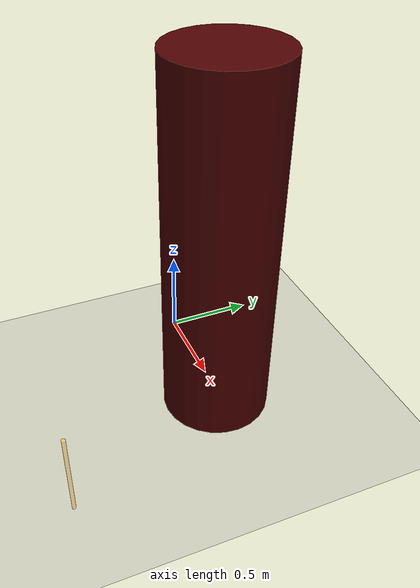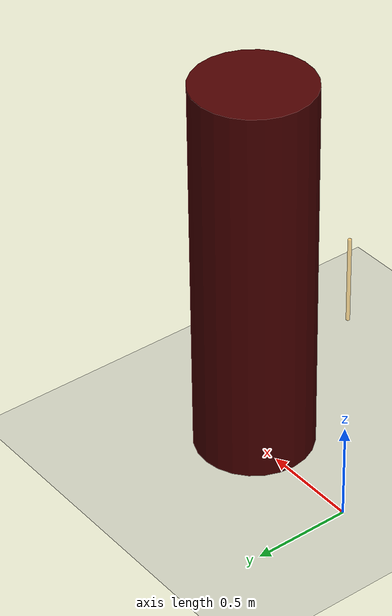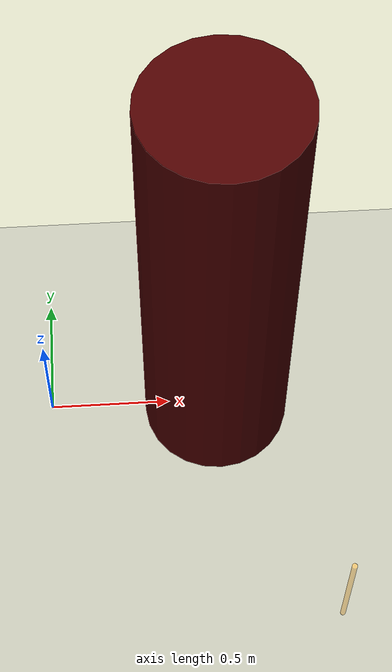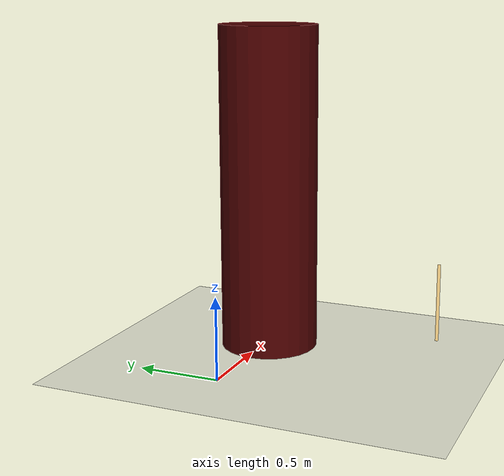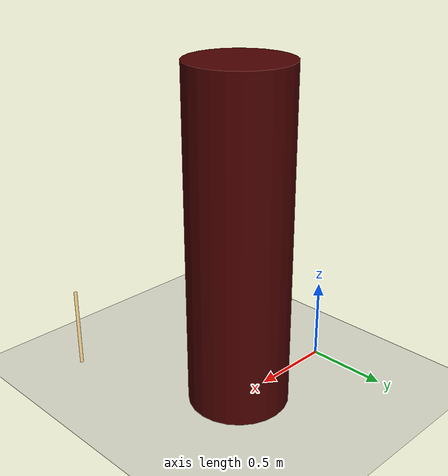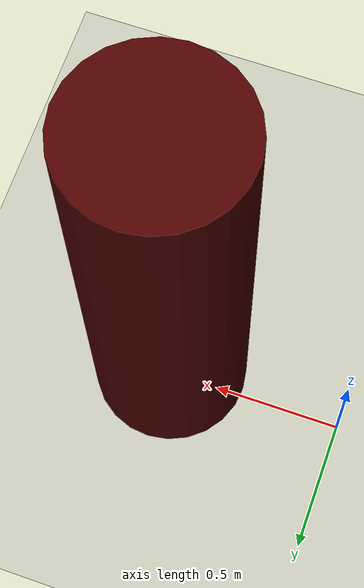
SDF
<sdf version="1.6">
 <world name="default">
  <physics name="default_physics" default="0" type="ode">
   <max_step_size>0.001</max_step_size>
   <real_time_factor>1</real_time_factor>
   <real_time_update_rate>0</real_time_update_rate>
  </physics>
  <light name="sun" type="directional">
   <pose>0 0 10 0 -0 0</pose>
   <diffuse>0.8 0.8 0.8 1</diffuse>
   <specular>0.2 0.2 0.2 1</specular>
   <attenuation>
    <range>1000</range>
    <constant>0.9</constant>
    <linear>0.01</linear>
    <quadratic>0.001</quadratic>
   </attenuation>
   <direction>0.5 0.1 -0.9</direction>
  </light>
  <scene><ambient>0.4 0.4 0.4 1</ambient><background>0.7 0.7 0.7 1</background><shadows>1</shadows></scene>
  <model name="ground_plane_0">
   <static>1</static>
   <link name="link">
    <collision name="collision">
     <geometry><plane><normal>0 0 1</normal><size>100 100</size></plane></geometry>
    </collision>
    <visual name="visual">
     <cast_shadows>0</cast_shadows>
     <geometry><plane><normal>0 0 1</normal><size>100 100</size></plane></geometry>
     <material>
      <script><uri>file://media/materials/scripts/gazebo.material</uri><name>Gazebo/Grey</name></script>
     </material>
    </visual>
    <velocity_decay><linear>0</linear><angular>0</angular></velocity_decay>
   </link>
   <pose>0.497681 0 0 0 -0 0</pose>
  </model>
  <gravity>0 0 -9.8</gravity>
  <magnetic_field>6e-06 2.3e-05 -4.2e-05</magnetic_field>
  <atmosphere type="adiabatic"/>
  <spherical_coordinates>
   <surface_model>EARTH_WGS84</surface_model>
   <latitude_deg>0</latitude_deg>
   <longitude_deg>0</longitude_deg>
   <elevation>0</elevation>
   <heading_deg>0</heading_deg>
  </spherical_coordinates>
  <model name="TargetMark5">
   <link name="link_0">
    <inertial>
     <mass>1</mass>
     <inertia><ixx>0.145833</ixx><ixy>0</ixy><ixz>0</ixz><iyy>0.145833</iyy><iyz>0</iyz><izz>0.125</izz></inertia>
    </inertial>
    <gravity>0</gravity>
    <visual name="visual">
     <geometry><cylinder><radius>0.0105</radius><length>1</length></cylinder></geometry>
     <material>
      <lighting>1</lighting>
      <script><uri>file://media/materials/scripts/gazebo.material</uri><name>Gazebo/Grey</name></script>
      <shader type="pixel"><normal_map>__default__</normal_map></shader>
      <ambient>1 0.6 0 1</ambient>
      <diffuse>1 0.6 0 1</diffuse>
      <specular>1 0.6 0 1</specular>
      <emissive>1 0.6 0 1</emissive>
     </material>
     <transparency>0.6</transparency>
    </visual>
    <collision name="collision">
     <geometry><cylinder><radius>1e-06</radius><length>0.01</length></cylinder></geometry>
     <surface>
      <friction>
       <ode><mu>1</mu><mu2>1</mu2><fdir1>0 0 0</fdir1><slip1>0</slip1><slip2>0</slip2></ode>
       <torsional>
        <coefficient>1</coefficient>
        <patch_radius>0</patch_radius>
        <surface_radius>0</surface_radius>
        <use_patch_radius>1</use_patch_radius>
        <ode><slip>0</slip></ode>
       </torsional>
      </friction>
      <bounce><restitution_coefficient>0</restitution_coefficient><threshold>1e+06</threshold></bounce>
      <contact>
       <collide_without_contact>0</collide_without_contact>
       <collide_without_contact_bitmask>1</collide_without_contact_bitmask>
       <collide_bitmask>1</collide_bitmask>
       <ode>
        <soft_cfm>0</soft_cfm>
        <soft_erp>0.2</soft_erp>
        <kp>1e+13</kp>
        <kd>1</kd>
        <max_vel>0.01</max_vel>
        <min_depth>0</min_depth>
       </ode>
       <bullet>
        <split_impulse>1</split_impulse>
        <split_impulse_penetration_threshold>-0.01</split_impulse_penetration_threshold>
        <soft_cfm>0</soft_cfm>
        <soft_erp>0.2</soft_erp>
        <kp>1e+13</kp>
        <kd>1</kd>
       </bullet>
      </contact>
     </surface>
    </collision>
   </link>
   <static>0</static>
   <pose>1.15 -1 0 0 -0 0</pose>
  </model>
  <model name="unit_cylinder_0_mario_2">
   <link name="link">
    <inertial>
     <mass>300</mass>
     <inertia><ixx>0.145833</ixx><ixy>0</ixy><ixz>0</ixz><iyy>0.145833</iyy><iyz>0</iyz><izz>0.125</izz></inertia>
    </inertial>
    <visual name="visual">
     <geometry><cylinder><radius>0.3</radius><length>2</length></cylinder></geometry>
     <material>
      <script><name>Gazebo/Grey</name><uri>file://media/materials/scripts/gazebo.material</uri></script>
      <ambient>0.3 0 0 1</ambient>
      <diffuse>0.7 0.7 0.7 1</diffuse>
      <specular>0.01 0.01 0.01 1</specular>
      <emissive>0 0 0 1</emissive>
      <shader type="vertex"><normal_map>__default__</normal_map></shader>
     </material>
    </visual>
    <collision name="collision">
     <geometry><cylinder><radius>0.3</radius><length>2</length></cylinder></geometry>
     <surface>
      <friction>
       <ode><mu>1</mu><mu2>1</mu2><fdir1>0 0 0</fdir1><slip1>0</slip1><slip2>0</slip2></ode>
       <torsional>
        <coefficient>1</coefficient>
        <patch_radius>0</patch_radius>
        <surface_radius>0</surface_radius>
        <use_patch_radius>1</use_patch_radius>
        <ode><slip>0</slip></ode>
       </torsional>
      </friction>
      <bounce><restitution_coefficient>0</restitution_coefficient><threshold>1e+06</threshold></bounce>
      <contact>
       <collide_without_contact>0</collide_without_contact>
       <collide_without_contact_bitmask>1</collide_without_contact_bitmask>
       <collide_bitmask>1</collide_bitmask>
       <ode>
        <soft_cfm>0</soft_cfm>
        <soft_erp>0.2</soft_erp>
        <kp>1e+13</kp>
        <kd>1</kd>
        <max_vel>0.01</max_vel>
        <min_depth>0</min_depth>
       </ode>
       <bullet>
        <split_impulse>1</split_impulse>
        <split_impulse_penetration_threshold>-0.01</split_impulse_penetration_threshold>
        <soft_cfm>0</soft_cfm>
        <soft_erp>0.2</soft_erp>
        <kp>1e+13</kp>
        <kd>1</kd>
       </bullet>
      </contact>
     </surface>
    </collision>
   </link>
   <static>0</static>
   <pose>0.700629 -0.025253 0.999994 6e-06 5e-06 0.025883</pose>
  </model>
 </world>
</sdf>
